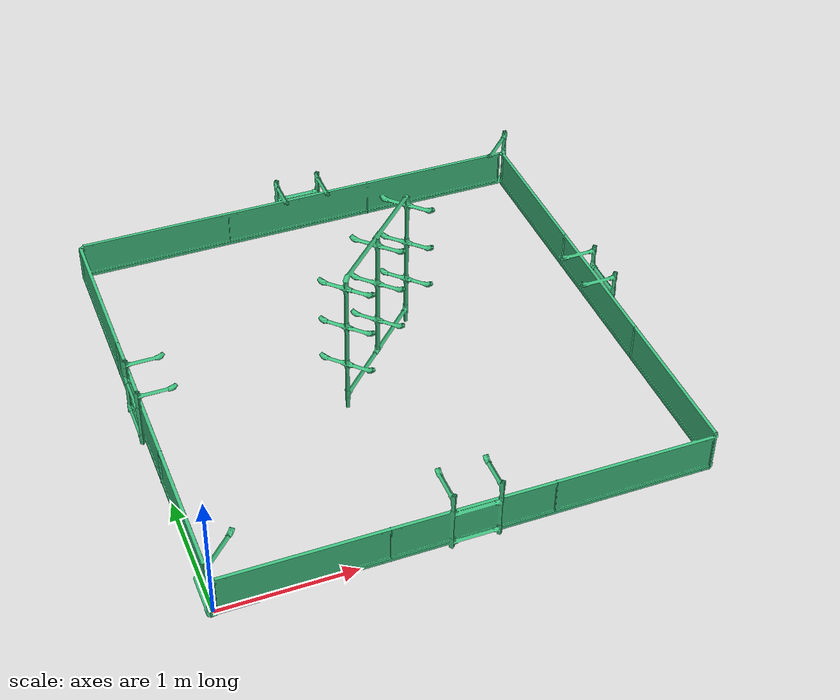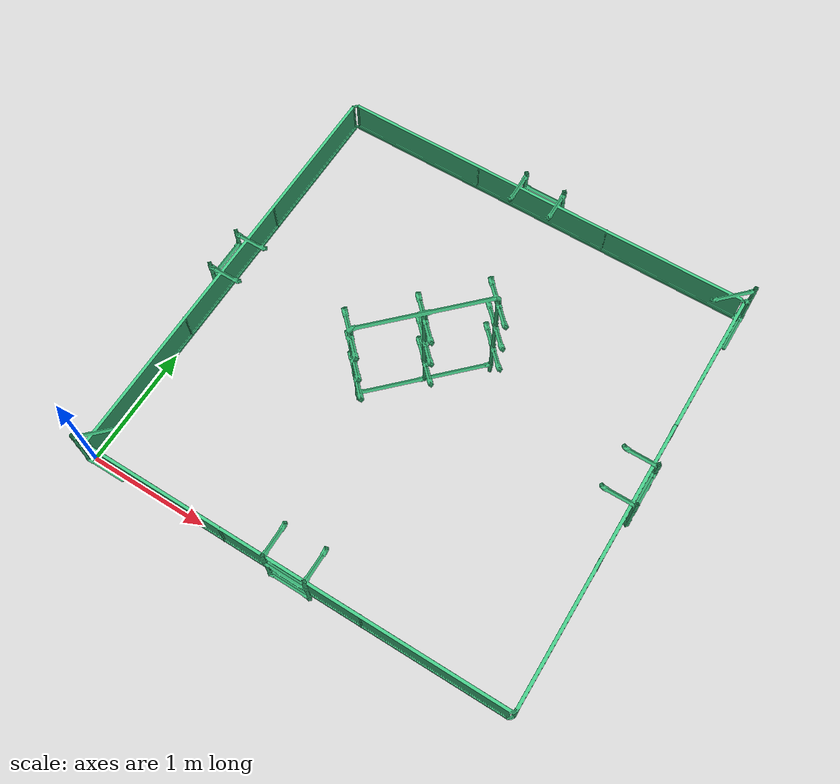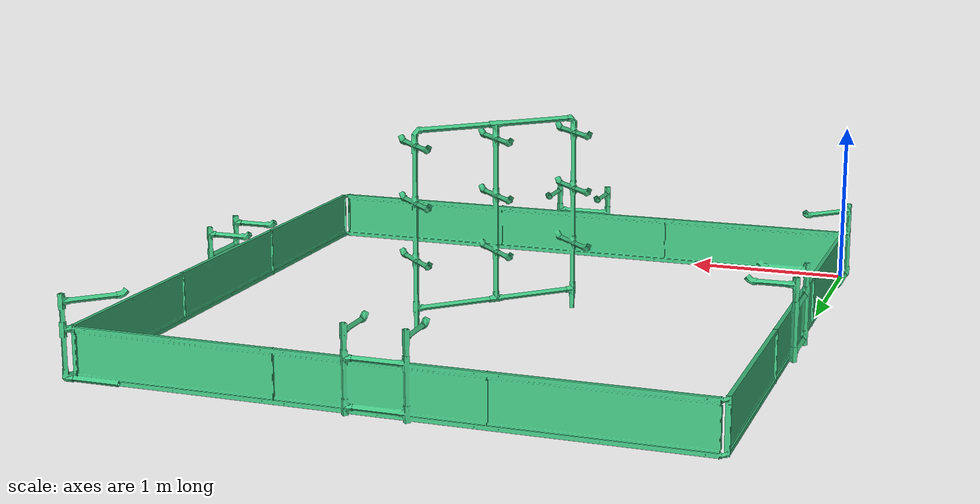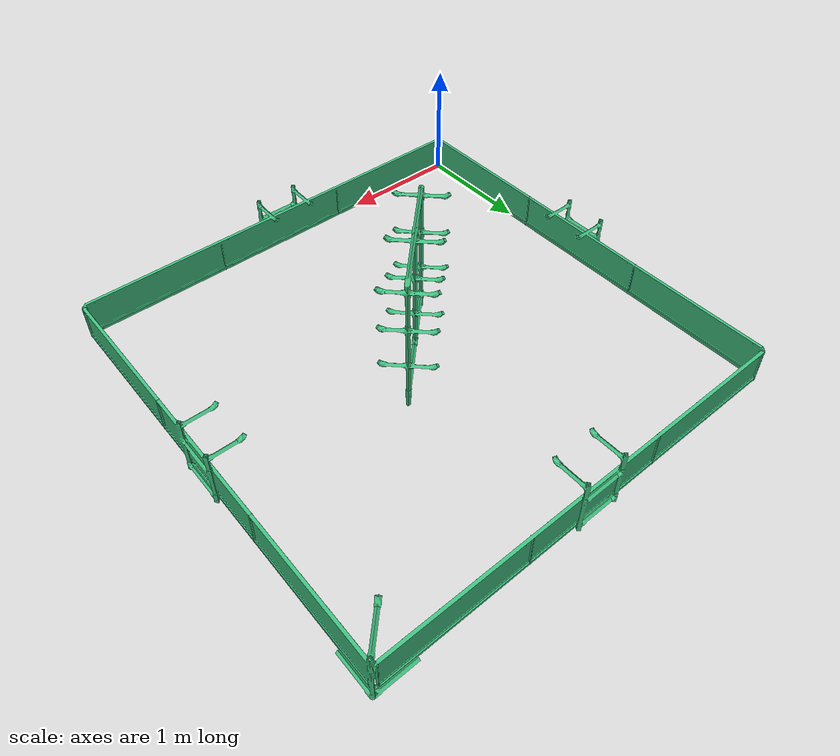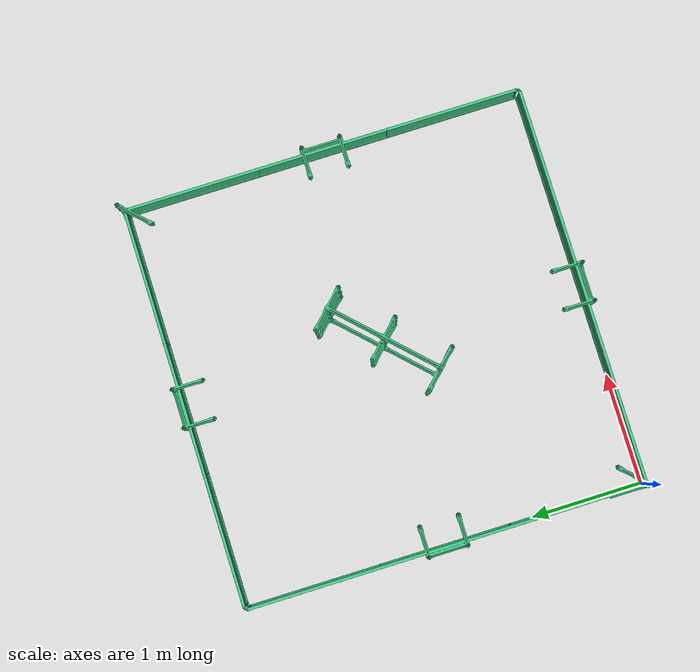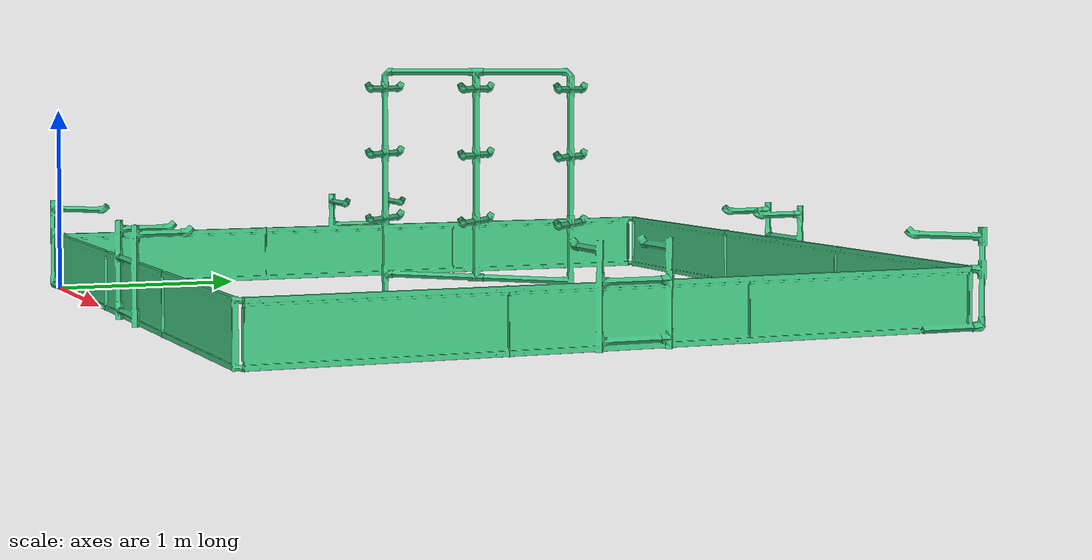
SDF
<?xml version="1.0"?>
<sdf version="1.4">
  <model name="ftc_arena_2013">
    <static>true</static>
    <link name="link">
      <pose>0 0 0 1.570796 0 0</pose>
      <collision name="collision">
        <geometry>
          <mesh>
            <uri>model://ftc_arena_2013/meshes/arena.stl</uri>
            <scale>.0254 .0254 .0254</scale>
          </mesh>
        </geometry>
      </collision>
      <visual name="visual">
        <geometry>
          <mesh>
            <uri>model://ftc_arena_2013/meshes/arena.stl</uri>
            <scale>.0254 .0254 .0254</scale>
          </mesh>
        </geometry>
        <material>
          <ambient>.25 .75 .5 1</ambient>
          <diffuse>.25 .75 .5 1</diffuse>
          <specular>.25 .75 .5 1</specular>
        </material>
      </visual>
    </link>
  </model>
</sdf>
